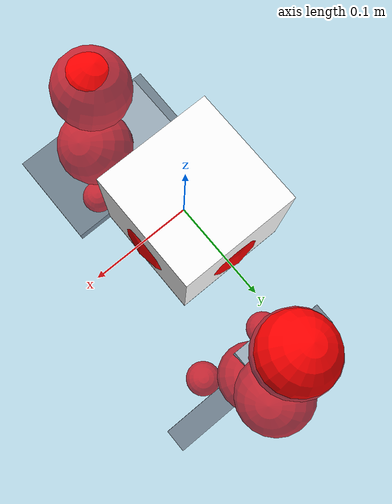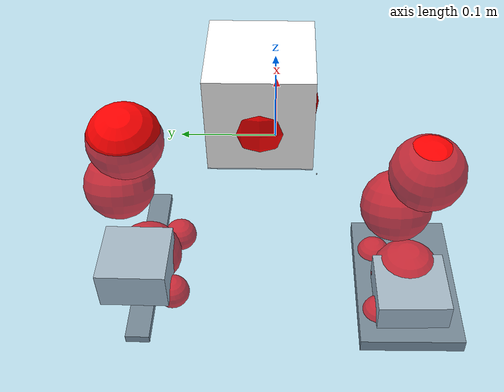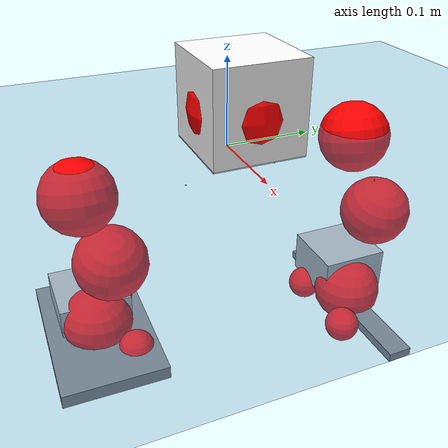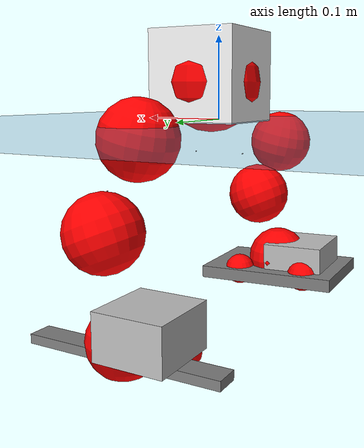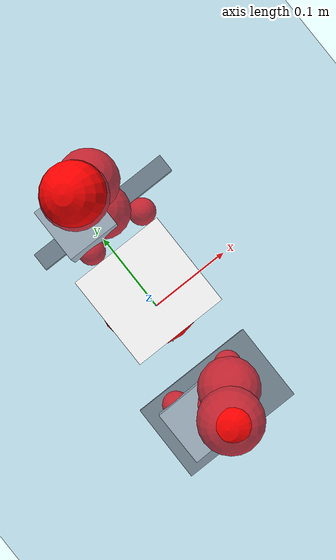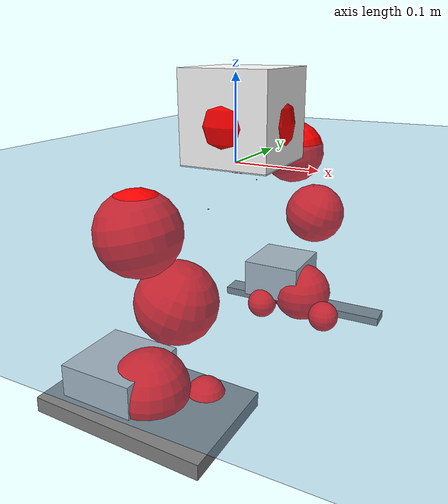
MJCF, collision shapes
<mujoco model="pi_12dof_release_v1">
  <compiler angle="radian" assetdir="assets" balanceinertia="true" inertiafromgeom="false"/>

  <option timestep="0.005" density="1.2" viscosity="2e-05"/>

  <size nkey="1"/>

  <visual>
    <quality shadowsize="8192"/>
    <map shadowclip="0.5"/>
  </visual>

  <default>
    <default class="/">
      <joint armature="0.01" damping="0.01" frictionloss="0.01"/>
      <geom contype="0" conaffinity="0" group="1" solref="-1000 -80"/>
      <site size="0.01 0.005 0.005" group="5"/>
      <general forcelimited="true" biastype="affine" gainprm="20" biasprm="0 -20 -0.5"/>
      <default class="foot">
        <geom size="0.0845 0.036 0.005" type="box" condim="6" group="4" priority="1" friction="0.9 0.2 0.2" solimp="0.015 1 0.005"/>
      </default>
      <default class="reward_collision_sphere">
        <geom group="5" rgba="1 0 0 1"/>
      </default>
    </default>
  </default>

  <asset>
    <texture type="skybox" colorspace="auto" name="//unnamed_texture_0" builtin="gradient" rgb1="0.95 0.95 0.95" rgb2="0.95 0.95 0.95" width="100" height="600"/>
    <texture type="2d" colorspace="auto" name="texplane" builtin="checker" rgb1="0.345 0.575 0.748" rgb2="0.345 0.575 0.748" markrgb="1 1 1" width="512" height="512"/>
    <material name="MatPlane" class="/" texture="texplane" texuniform="true" texrepeat="2 2" specular="0.9"/>
    <mesh name="baselink_1" class="/" file="baselink_1.STL"/>
    <mesh name="r_hip_pitch_link" class="/" file="r_hip_pitch_link.STL"/>
    <mesh name="r_hip_roll_link" class="/" file="r_hip_roll_link.STL"/>
    <mesh name="r_thigh_link" class="/" file="r_thigh_link.STL"/>
    <mesh name="r_calf_link" class="/" file="r_calf_link.STL"/>
    <mesh name="r_ankle_pitch_link" class="/" file="r_ankle_pitch_link.STL"/>
    <mesh name="r_ankle_roll_link" class="/" file="r_ankle_roll_link.STL"/>
    <mesh name="l_hip_pitch_link" class="/" file="l_hip_pitch_link.STL"/>
    <mesh name="l_hip_roll_link" class="/" file="l_hip_roll_link.STL"/>
    <mesh name="l_thigh_link" class="/" file="l_thigh_link.STL"/>
    <mesh name="l_calf_link" class="/" file="l_calf_link.STL"/>
    <mesh name="l_ankle_pitch_link" class="/" file="l_ankle_pitch_link.STL"/>
    <mesh name="l_ankle_roll_link" class="/" file="l_ankle_roll_link.STL"/>
  </asset>

  <worldbody>
    <geom name="floor" class="/" size="100 100 0.125" type="plane" group="0" material="MatPlane"/>
    <light name="toplight_shadow" class="/" pos="0 0 5" dir="0.0990148 0.0990148 -0.990148" type="directional" ambient="0.04 0.04 0.04" diffuse="0.55 0.55 0.55" specular="0.12 0.12 0.12"/>
    <light name="toplight_fill" class="/" pos="0 0 5" dir="0.0990148 0.0990148 -0.990148" type="directional" castshadow="false" ambient="0.04 0.04 0.04" diffuse="0.3 0.3 0.3" specular="0.08 0.08 0.08"/>
    <body name="trunk" pos="0.00239323 0.0149007 -0.00520709" quat="1 0.000239706 -2.30833e-05 0.000147019">
      <inertial pos="-0.00697548 0.0155532 0.0326555" quat="0.754331 0.0508887 -0.00770433 0.654474" mass="2.66625" diaginertia="0.00216096 0.193971 0.000739949"/>
      <joint name="//unnamed_joint_0" type="free"/>
      <geom name="//unnamed_geom_1" class="/" type="mesh" density="0" rgba="1 1 1 1" mesh="baselink_1"/>
      <geom name="//unnamed_geom_2" class="/" size="0.0535456 0.0535456 0.0535456" pos="0 0 0.056795" type="box" rgba="1 1 1 1"/>
      <geom name="//unnamed_geom_3" class="reward_collision_sphere" size="0.0589002" pos="0 0 0.0496956"/>
      <site name="imu" class="/" pos="-0.0728171 -0.0608745 0.0744224" size="0.0107091"/>
      <camera name="track" class="/" pos="0 -3.55929 0" quat="0.707107 0.707107 0 0" mode="trackcom"/>
      <camera name="ego_camera" class="/" pos="0.0542367 0 0.127789" quat="-0.5 -0.5 0.5 0.5"/>
      <body name="r_hip_pitch_link" pos="-0.0133725 -0.0605871 -0.0402676" quat="0.992309 -0.00711899 -0.123554 -0.0026289">
        <inertial pos="0.00699364 -0.0971171 -0.0115458" quat="-0.0185349 0.688758 -0.0153574 0.724591" mass="0.562942" diaginertia="2.07824e-05 0.00189709 1.41665e-05"/>
        <joint name="r_hip_pitch_joint" class="/" pos="0 0 0" axis="-0.023136 -0.998806 -0.0430359" stiffness="0.0203543" range="-1.79101 1.48892" armature="0.00871386" damping="0.00782488" frictionloss="0.0149529"/>
        <geom name="//unnamed_geom_4" class="/" type="mesh" density="0" rgba="0.75294 0.75294 0.75294 1" mesh="r_hip_pitch_link"/>
        <geom name="//unnamed_geom_5" class="/" size="0.000535456 0.000535456 0.000535456" type="box" rgba="0.75294 0.75294 0.75294 1"/>
        <body name="r_hip_roll_link" pos="-0.00239921 -0.120295 0.00714203" quat="0.999976 0.00213202 0.00653405 0.00125237">
          <inertial pos="-0.0152682 -0.0121722 -0.0495506" quat="0.696337 -0.160008 -0.080731 0.694978" mass="0.474704" diaginertia="5.83045e-05 0.00460124 2.43002e-05"/>
          <joint name="r_hip_roll_joint" class="/" pos="0 0 0" axis="-0.997813 0.0659886 -0.00373669" range="-0.0496898 0.185019" armature="0.0185113" damping="0.119506" frictionloss="0.0132219"/>
          <geom name="//unnamed_geom_6" class="/" type="mesh" density="0" rgba="0.75294 0.75294 0.75294 1" mesh="r_hip_roll_link"/>
          <geom name="//unnamed_geom_7" class="/" size="0.000535456 0.000535456 0.000535456" type="box" rgba="0.75294 0.75294 0.75294 1"/>
          <geom name="//unnamed_geom_8" class="reward_collision_sphere" size="0.0428365"/>
          <body name="r_thigh_link" pos="0.00878279 0.0173906 -0.0394473" quat="0.999983 -0.00503022 -0.000804038 0.00290298">
            <inertial pos="-0.0131976 0.00119091 -0.0150692" quat="0.737329 0.675433 0.0108925 -0.00430056" mass="0.143976" diaginertia="2.834e-05 0.0012704 1.24293e-05"/>
            <joint name="r_thigh_joint" class="/" pos="0 0 0" axis="0.0129779 -0.00303801 -0.999911" stiffness="0.0620538" range="-0.0246982 0.528736" armature="0.016088" damping="0" frictionloss="0.00912281"/>
            <geom name="//unnamed_geom_9" class="/" type="mesh" density="0" rgba="0.75294 0.75294 0.75294 1" mesh="r_thigh_link"/>
            <geom name="//unnamed_geom_10" class="/" size="0.000535456 0.000535456 0.000535456" type="box" rgba="0.75294 0.75294 0.75294 1"/>
            <body name="r_calf_link" pos="-0.00293122 0.00625643 -0.039525" quat="0.94763 -3.9415e-05 0.31937 -0.000143095">
              <inertial pos="0.00939045 -0.00963624 -0.057233" quat="0.999627 -0.024575 -0.00349758 0.0113719" mass="1.12831" diaginertia="0.000723845 0.0727925 2.38577e-05"/>
              <joint name="r_calf_joint" class="/" pos="0 0 0" axis="-0.0605789 -0.998156 0.00388631" stiffness="0.0565653" range="-2.0388 0.415414" armature="0.015086" damping="0.011174" frictionloss="0.00463773"/>
              <geom name="//unnamed_geom_11" class="/" type="mesh" density="0" rgba="0.75294 0.75294 0.75294 1" mesh="r_calf_link"/>
              <geom name="//unnamed_geom_12" class="/" size="0.000535456 0.000535456 0.000535456" type="box" rgba="0.75294 0.75294 0.75294 1"/>
              <geom name="//unnamed_geom_13" class="reward_collision_sphere" size="0.0428365"/>
              <body name="r_ankle_pitch_link" pos="-0.0173765 -0.0189315 -0.111634" quat="0.980665 -0.000931966 -0.195637 0.00460775">
                <inertial pos="0.0146684 0.0251673 0.00457874" quat="0.008214 0.749281 0.00936358 0.662135" mass="0.143241" diaginertia="4.58331e-05 0.00318476 1.9506e-05"/>
                <joint name="r_ankle_pitch_joint" class="/" pos="0 0 0" axis="0.0868397 -0.996049 -0.0186065" range="-1.52083 0.14904" armature="0.00855524" damping="0" frictionloss="0.0158761"/>
                <geom name="//unnamed_geom_14" class="/" type="mesh" density="0" rgba="0.75294 0.75294 0.75294 1" mesh="r_ankle_pitch_link"/>
                <geom name="//unnamed_geom_15" class="/" size="0.0417656 0.0428365 0.0267728" type="box" rgba="0.75294 0.75294 0.75294 1"/>
                <body name="r_ankle_roll_link" pos="0.0723675 4.03301e-05 0.012716" quat="0.999967 0.00204597 0.00445741 -0.00647789">
                  <inertial pos="-0.0269718 -0.00168111 -0.0239615" quat="0.569209 0.470382 0.385403 0.55336" mass="0.589803" diaginertia="0.000200535 0.0177604 4.48916e-05"/>
                  <joint name="r_ankle_roll_joint" class="/" pos="0 0 0" axis="-0.999998 -0.00135557 -0.00152227" range="0.218936 0.0926838" armature="0.0119571" damping="0.0387987" frictionloss="0.0168769"/>
                  <geom name="//unnamed_geom_16" class="/" type="mesh" density="0" rgba="0.75294 0.75294 0.75294 1" mesh="r_ankle_roll_link"/>
                  <geom name="//unnamed_geom_17" class="/" type="mesh" rgba="0.75294 0.75294 0.75294 1" mesh="r_ankle_roll_link"/>
                  <geom name="right_foot" class="foot" size="0.0973927 0.0613607 0.00846153" pos="-0.0368809 0 -0.0312372"/>
                  <geom name="//unnamed_geom_19" class="reward_collision_sphere" size="0.0428365" pos="-0.0361578 0 -0.0141987"/>
                  <geom name="//unnamed_geom_20" class="reward_collision_sphere" size="0.0214182" pos="0.0108473 0.0355929 -0.0283975"/>
                  <geom name="//unnamed_geom_21" class="reward_collision_sphere" size="0.0214182" pos="-0.0867787 0.0355929 -0.0283975"/>
                  <site name="right_foot" class="foot" pos="-0.0368809 0 -0.0312372" size="0.0107091"/>
                </body>
              </body>
            </body>
          </body>
        </body>
      </body>
      <body name="l_hip_pitch_link" pos="-0.00545376 0.0474581 -0.0284976" quat="0.992436 -0.00419596 -0.122689 0.000229561">
        <inertial pos="-0.00200787 0.112463 -0.0120764" quat="-0.0137171 0.686404 0.00845472 0.727042" mass="0.371834" diaginertia="2.15382e-05 0.00164177 1.63292e-05"/>
        <joint name="l_hip_pitch_joint" class="/" pos="0 0 0" axis="-0.00155893 0.999999 0.000329466" range="-1.20341 1.82654" armature="0.013794" damping="0.0841028" frictionloss="0.00348478"/>
        <geom name="//unnamed_geom_22" class="/" type="mesh" density="0" rgba="0.75294 0.75294 0.75294 1" mesh="l_hip_pitch_link"/>
        <geom name="//unnamed_geom_23" class="/" size="0.000535456 0.000535456 0.000535456" type="box" rgba="0.75294 0.75294 0.75294 1"/>
        <body name="l_hip_roll_link" pos="0.0128413 0.101704 0.0177893" quat="0.999993 0.00237424 -0.00283958 0.000325511">
          <inertial pos="-0.00383279 0.00576289 -0.025248" quat="0.70835 -0.0691068 -0.0174503 0.702253" mass="0.317937" diaginertia="6.3808e-05 0.0037916 2.16897e-05"/>
          <joint name="l_hip_roll_joint" class="/" pos="0 0 0" axis="-0.997129 -0.0376704 0.0656905" range="-0.145157 0.156639" armature="0.0023621" damping="0" frictionloss="0.00549634"/>
          <geom name="//unnamed_geom_24" class="/" type="mesh" density="0" rgba="0.75294 0.75294 0.75294 1" mesh="l_hip_roll_link"/>
          <geom name="//unnamed_geom_25" class="/" size="0.000535456 0.000535456 0.000535456" type="box" rgba="0.75294 0.75294 0.75294 1"/>
          <geom name="//unnamed_geom_26" class="reward_collision_sphere" size="0.0428365"/>
          <body name="l_thigh_link" pos="0.0124912 0.0192085 -0.0559028" quat="0.999992 -0.00177735 -0.00348397 0.000153672">
            <inertial pos="0.0051765 -0.0043386 -0.0276313" quat="0.686012 0.727403 0.00203178 0.0163626" mass="0.0980396" diaginertia="1.65528e-05 0.00150249 8.61832e-06"/>
            <joint name="l_thigh_joint" class="/" pos="0 0 0" axis="0.0105289 -0.0123622 -0.999868" range="-0.726406 0.249489" armature="0.0172033" damping="0.0249699" frictionloss="0.0116634"/>
            <geom name="//unnamed_geom_27" class="/" type="mesh" density="0" rgba="0.75294 0.75294 0.75294 1" mesh="l_thigh_link"/>
            <geom name="//unnamed_geom_28" class="/" size="0.000535456 0.000535456 0.000535456" type="box" rgba="0.75294 0.75294 0.75294 1"/>
            <body name="l_calf_link" pos="-0.00892015 0.00587777 -0.0416878" quat="0.947011 -0.00115125 0.321104 -0.00779223">
              <inertial pos="-0.00802272 -0.00915915 -0.0361955" quat="0.999122 0.0137327 0.0363238 0.0157019" mass="0.801863" diaginertia="0.000482115 0.0464726 2.08603e-05"/>
              <joint name="l_calf_joint" class="/" pos="0 0 0" axis="0.0451002 0.997799 0.0486222" stiffness="0.0464012" range="-0.802987 1.85482" armature="0.00658306" damping="0" frictionloss="0.00566838"/>
              <geom name="//unnamed_geom_29" class="/" type="mesh" density="0" rgba="0.75294 0.75294 0.75294 1" mesh="l_calf_link"/>
              <geom name="//unnamed_geom_30" class="/" size="0.000535456 0.000535456 0.000535456" type="box" rgba="0.75294 0.75294 0.75294 1"/>
              <geom name="//unnamed_geom_31" class="reward_collision_sphere" size="0.0428365"/>
              <body name="l_ankle_pitch_link" pos="-0.002959 -0.0139376 -0.109428" quat="0.980173 0.0070769 -0.197963 0.00456464">
                <inertial pos="0.00204901 0.015688 -0.0124873" quat="0.0218817 0.713278 0.0291058 0.699935" mass="0.236635" diaginertia="6.58994e-05 0.00436015 2.48563e-05"/>
                <joint name="l_ankle_pitch_joint" class="/" pos="0 0 0" axis="0.000323547 1 0.000449384" stiffness="0.0478666" range="-0.203393 1.04299" armature="0.00781634" damping="0" frictionloss="0.0104749"/>
                <geom name="//unnamed_geom_32" class="/" type="mesh" density="0" rgba="0.75294 0.75294 0.75294 1" mesh="l_ankle_pitch_link"/>
                <geom name="//unnamed_geom_33" class="/" size="0.0417656 0.0428365 0.0267728" type="box" rgba="0.75294 0.75294 0.75294 1"/>
                <body name="l_ankle_roll_link" pos="0.0743679 -0.00774624 -0.00670919" quat="0.999985 0.00396634 -0.00109894 0.00358325">
                  <inertial pos="-0.0367164 0.000937694 -0.00174071" quat="0.570121 0.411746 0.470161 0.533269" mass="0.648255" diaginertia="0.000168913 0.0196104 4.46723e-05"/>
                  <joint name="l_ankle_roll_joint" class="/" pos="0 0 0" axis="-0.995573 0.0411696 0.0844898" stiffness="0.0516714" range="-0.526181 0.443566" armature="0.00210665" damping="0" frictionloss="0.0193361"/>
                  <geom name="//unnamed_geom_34" class="/" type="mesh" density="0" rgba="0.75294 0.75294 0.75294 1" mesh="l_ankle_roll_link"/>
                  <geom name="//unnamed_geom_35" class="/" type="mesh" rgba="0.75294 0.75294 0.75294 1" mesh="l_ankle_roll_link"/>
                  <geom name="left_foot" class="foot" size="0.121697 0.0146319 0.00551379" pos="-0.0368809 0 -0.0312372"/>
                  <geom name="//unnamed_geom_37" class="reward_collision_sphere" size="0.0428365" pos="-0.0361578 0 -0.0141987"/>
                  <geom name="//unnamed_geom_38" class="reward_collision_sphere" size="0.0214182" pos="0.0108473 -0.0355929 -0.0283975"/>
                  <geom name="//unnamed_geom_39" class="reward_collision_sphere" size="0.0214182" pos="-0.0867787 -0.0355929 -0.0283975"/>
                  <site name="left_foot" class="foot" pos="-0.0368809 0 -0.0312372" size="0.0107091"/>
                </body>
              </body>
            </body>
          </body>
        </body>
      </body>
    </body>
  </worldbody>

  <contact>
    <pair class="/" geom1="floor" geom2="right_foot" name="//unnamed_contact_1"/>
    <pair class="/" geom1="floor" geom2="left_foot" name="//unnamed_contact_0"/>
  </contact>

  <actuator>
    <general name="r_hip_pitch_joint" class="/" joint="r_hip_pitch_joint" forcerange="-29.4443 29.4443" gainprm="28.1045" biasprm="0 -28.1045 -0.656611"/>
    <general name="r_hip_roll_joint" class="/" joint="r_hip_roll_joint" forcerange="-20.9497 20.9497" gainprm="28.1045" biasprm="0 -28.1045 -0.656611"/>
    <general name="r_thigh_joint" class="/" joint="r_thigh_joint" forcerange="-11.0856 11.0856" gainprm="28.1045" biasprm="0 -28.1045 -0.656611"/>
    <general name="r_calf_joint" class="/" joint="r_calf_joint" forcerange="-36.4653 36.4653" gainprm="28.1045" biasprm="0 -28.1045 -0.656611"/>
    <general name="r_ankle_pitch_joint" class="/" joint="r_ankle_pitch_joint" forcerange="-7.63142 7.63142" gainprm="28.1045" biasprm="0 -28.1045 -0.656611"/>
    <general name="r_ankle_roll_joint" class="/" joint="r_ankle_roll_joint" forcerange="-7.55541 7.55541" gainprm="28.1045" biasprm="0 -28.1045 -0.656611"/>
    <general name="l_hip_pitch_joint" class="/" joint="l_hip_pitch_joint" forcerange="-6.20157 6.20157" gainprm="28.1045" biasprm="0 -28.1045 -0.656611"/>
    <general name="l_hip_roll_joint" class="/" joint="l_hip_roll_joint" forcerange="-33.9054 33.9054" gainprm="28.1045" biasprm="0 -28.1045 -0.656611"/>
    <general name="l_thigh_joint" class="/" joint="l_thigh_joint" forcerange="-29.9015 29.9015" gainprm="28.1045" biasprm="0 -28.1045 -0.656611"/>
    <general name="l_calf_joint" class="/" joint="l_calf_joint" forcerange="-7.61604 7.61604" gainprm="28.1045" biasprm="0 -28.1045 -0.656611"/>
    <general name="l_ankle_pitch_joint" class="/" joint="l_ankle_pitch_joint" forcerange="-7.58625 7.58625" gainprm="28.1045" biasprm="0 -28.1045 -0.656611"/>
    <general name="l_ankle_roll_joint" class="/" joint="l_ankle_roll_joint" forcerange="-11.2395 11.2395" gainprm="28.1045" biasprm="0 -28.1045 -0.656611"/>
  </actuator>

  <sensor>
    <gyro site="imu" name="imu_angular_velocity"/>
    <velocimeter site="imu" name="imu_linear_velocity"/>
    <framelinvel objtype="site" objname="left_foot" name="left_foot_global_linear_velocity"/>
    <framelinvel objtype="site" objname="right_foot" name="right_foot_global_linear_velocity"/>
  </sensor>

  <keyframe>
    <key name="home" qpos="0 0 0.291 1 0 0 0 0.4 0 0 -0.8 0.4 0 -0.4 0 0 0.8 -0.4 0"/>
  </keyframe>
</mujoco>
